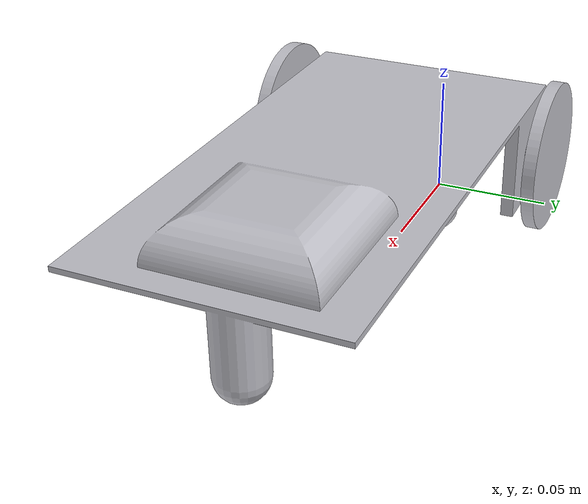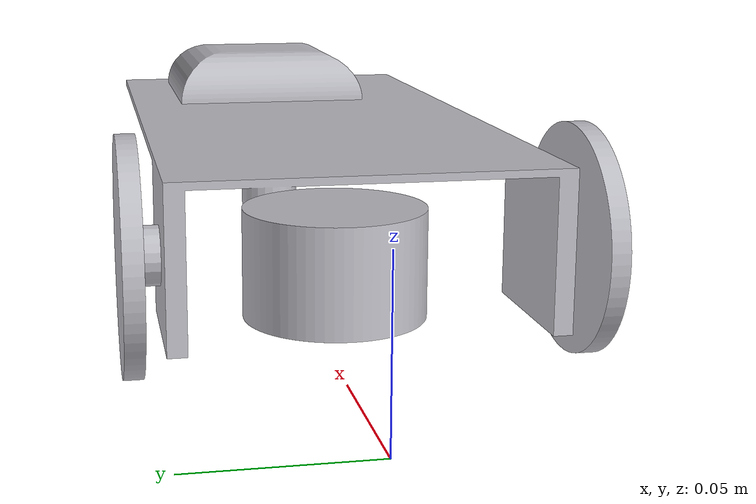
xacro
<?xml version="1.0" ?>
<robot name="task" xmlns:xacro="http://www.ros.org/wiki/xacro">

<xacro:include filename="$(find task_description)/urdf/materials.xacro" />
<xacro:include filename="$(find task_description)/urdf/task.trans" />
<xacro:include filename="$(find task_description)/urdf/task.gazebo" />
<link name="base_link">
  <inertial>
    <origin xyz="0.020420103985685195 -5.448246417010329e-05 -0.0021843582979352836" rpy="0 0 0"/>
    <mass value="0.9053692466696087"/>
    <inertia ixx="0.000838" iyy="0.003678" izz="0.004167" ixy="1e-05" iyz="-1.7e-05" ixz="-0.000217"/>
  </inertial>
  <visual>
    <origin xyz="0 0 0" rpy="0 0 0"/>
    <geometry>
      <mesh filename="package://task_description/meshes/base_link.stl" scale="0.001 0.001 0.001"/>
    </geometry>
    <material name="silver"/>
  </visual>
  <collision>
    <origin xyz="0 0 0" rpy="0 0 0"/>
    <geometry>
      <mesh filename="package://task_description/meshes/base_link.stl" scale="0.001 0.001 0.001"/>
    </geometry>
  </collision>
</link>

<link name="right_wheel_1">
  <inertial>
    <origin xyz="-4.221040822011135e-07 -0.0025000000000000022 -3.469446951953614e-18" rpy="0 0 0"/>
    <mass value="0.11097676048805943"/>
    <inertia ixx="2.5e-05" iyy="5e-05" izz="2.5e-05" ixy="0.0" iyz="0.0" ixz="-0.0"/>
  </inertial>
  <visual>
    <origin xyz="0.080966 0.055 0.019" rpy="0 0 0"/>
    <geometry>
      <mesh filename="package://task_description/meshes/right_wheel_1.stl" scale="0.001 0.001 0.001"/>
    </geometry>
    <material name="silver"/>
  </visual>
  <collision>
    <origin xyz="0.080966 0.055 0.019" rpy="0 0 0"/>
    <geometry>
      <mesh filename="package://task_description/meshes/right_wheel_1.stl" scale="0.001 0.001 0.001"/>
    </geometry>
  </collision>
</link>

<link name="left_wheel_1">
  <inertial>
    <origin xyz="1.3877787807814457e-17 0.0024999999999999814 -6.938893903907228e-18" rpy="0 0 0"/>
    <mass value="0.1109767604880594"/>
    <inertia ixx="2.5e-05" iyy="5e-05" izz="2.5e-05" ixy="-0.0" iyz="0.0" ixz="0.0"/>
  </inertial>
  <visual>
    <origin xyz="0.08 -0.055 0.02" rpy="0 0 0"/>
    <geometry>
      <mesh filename="package://task_description/meshes/left_wheel_1.stl" scale="0.001 0.001 0.001"/>
    </geometry>
    <material name="silver"/>
  </visual>
  <collision>
    <origin xyz="0.08 -0.055 0.02" rpy="0 0 0"/>
    <geometry>
      <mesh filename="package://task_description/meshes/left_wheel_1.stl" scale="0.001 0.001 0.001"/>
    </geometry>
  </collision>
</link>

<link name="liar_1">
  <inertial>
    <origin xyz="3.3905012428864234e-07 4.404705351366677e-07 0.015" rpy="0 0 0"/>
    <mass value="0.4624031687002473"/>
    <inertia ixx="0.000107" iyy="0.000107" izz="0.000145" ixy="0.0" iyz="-0.0" ixz="0.0"/>
  </inertial>
  <visual>
    <origin xyz="-0.059804 -0.001533 -0.017" rpy="0 0 0"/>
    <geometry>
      <mesh filename="package://task_description/meshes/liar_1.stl" scale="0.001 0.001 0.001"/>
    </geometry>
    <material name="silver"/>
  </visual>
  <collision>
    <origin xyz="-0.059804 -0.001533 -0.017" rpy="0 0 0"/>
    <geometry>
      <mesh filename="package://task_description/meshes/liar_1.stl" scale="0.001 0.001 0.001"/>
    </geometry>
  </collision>
</link>

<joint name="Rev1" type="continuous">
  <origin xyz="-0.080966 -0.055 -0.019" rpy="0 0 0"/>
  <parent link="base_link"/>
  <child link="right_wheel_1"/>
  <axis xyz="0.0 1.0 0.0"/>
</joint>

<joint name="Rev2" type="continuous">
  <origin xyz="-0.08 0.055 -0.02" rpy="0 0 0"/>
  <parent link="base_link"/>
  <child link="left_wheel_1"/>
  <axis xyz="0.0 1.0 0.0"/>
</joint>

<joint name="Rigid3" type="fixed">
  <origin xyz="0.059804 0.001533 0.017" rpy="0 0 0"/>
  <parent link="base_link"/>
  <child link="liar_1"/>
</joint>

</robot>

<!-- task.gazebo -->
<robot name="task" xmlns:xacro="http://www.ros.org/wiki/xacro" >

<xacro:property name="body_color" value="Gazebo/Silver" />

<gazebo>
  <plugin name="control" filename="libgazebo_ros_control.so"/>
</gazebo>
<gazebo reference="base_link">
  <material>${body_color}</material>
  <mu1>3500</mu1>
  <mu2>3500</mu2>
  <selfCollide>true</selfCollide>
  <gravity>true</gravity>
</gazebo>

<gazebo reference="right_wheel_1">
  <material>${body_color}</material>
  <mu1>3500</mu1>
  <mu2>3500</mu2>
  <selfCollide>true</selfCollide>
</gazebo>

<gazebo reference="left_wheel_1">
  <material>${body_color}</material>
  <mu1>3500</mu1>
  <mu2>3500</mu2>
  <selfCollide>true</selfCollide>
</gazebo>

<gazebo reference="liar_1">
  <material>${body_color}</material>
  <mu1>0.2</mu1>
  <mu2>0.2</mu2>
  <selfCollide>true</selfCollide>
</gazebo>
  <gazebo>
  <plugin name="differential_drive_controller" filename="libgazebo_ros_diff_drive.so">

    <!-- Plugin update rate in Hz -->
    <updateRate>$1000</updateRate>

    <!-- Name of left joint, defaults to `left_joint` -->
    <leftJoint>Rev2</leftJoint>

    <!-- Name of right joint, defaults to `right_joint` -->
    <rightJoint>Rev1</rightJoint>

    <!-- The distance from the center of one wheel to the other, in meters, defaults to 0.34 m -->
    <wheelSeparation>0.5380</wheelSeparation>

    <!-- Diameter of the wheels, in meters, defaults to 0.15 m -->
    <wheelDiameter>0.2410</wheelDiameter>

    <!-- Wheel acceleration, in rad/s^2, defaults to 0.0 rad/s^2 -->
    <wheelAcceleration>1.0</wheelAcceleration>

    <!-- Maximum torque which the wheels can produce, in Nm, defaults to 5 Nm -->
    <wheelTorque>20</wheelTorque>

    <!-- Topic to receive geometry_msgs/Twist message commands, defaults to `cmd_vel` -->
    <commandTopic>cmd_vel</commandTopic>

    <!-- Topic to publish nav_msgs/Odometry messages, defaults to `odom` -->
    <odometryTopic>odom</odometryTopic>

    <!-- Odometry frame, defaults to `odom` -->
    <odometryFrame>odom</odometryFrame>

    <!-- Robot frame to calculate odometry from, defaults to `base_footprint` -->
    <robotBaseFrame>base_link</robotBaseFrame>

    <!-- Odometry source, 0 for ENCODER, 1 for WORLD, defaults to WORLD -->
    <odometrySource>1</odometrySource>

    <!-- Set to true to publish transforms for the wheel links, defaults to false -->
    <publishWheelTF>true</publishWheelTF>

    <!-- Set to true to publish transforms for the odometry, defaults to true -->
    <publishOdom>true</publishOdom>

    <!-- Set to true to publish sensor_msgs/JointState on /joint_states for the wheel joints, defaults to false -->
    <publishWheelJointState>true</publishWheelJointState>

    <!-- Set to true to swap right and left wheels, defaults to true -->
    <legacyMode>false</legacyMode>
  </plugin>
</gazebo>

</robot>
